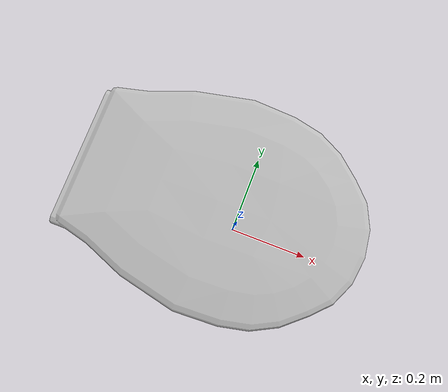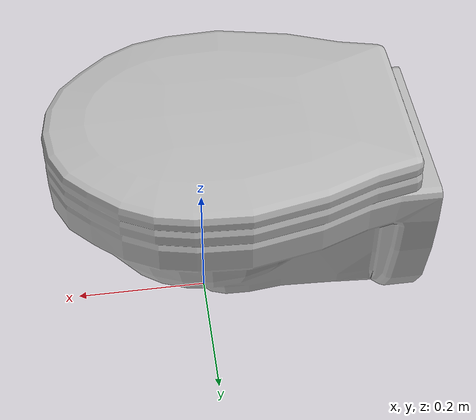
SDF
<?xml version='1.0'?>
<sdf version='1.4'>
  <model name='418'>
    <pose>0 0 0 0 0 0</pose>
    <static>true</static>
    <link name='link'>
      <collision name='collision'>
        <pose>0 0 0 0 0 0</pose>
        <geometry>
          <box>
            <size>0.54 0.39 2</size>
          </box>
        </geometry>
      </collision>
      <visual name='visual'>
        <pose>0 0 0 0 0 0</pose>
        <geometry>
          <mesh><uri>model://418/418.dae</uri></mesh>
        </geometry>
      </visual>
    </link>
  </model>
</sdf>
